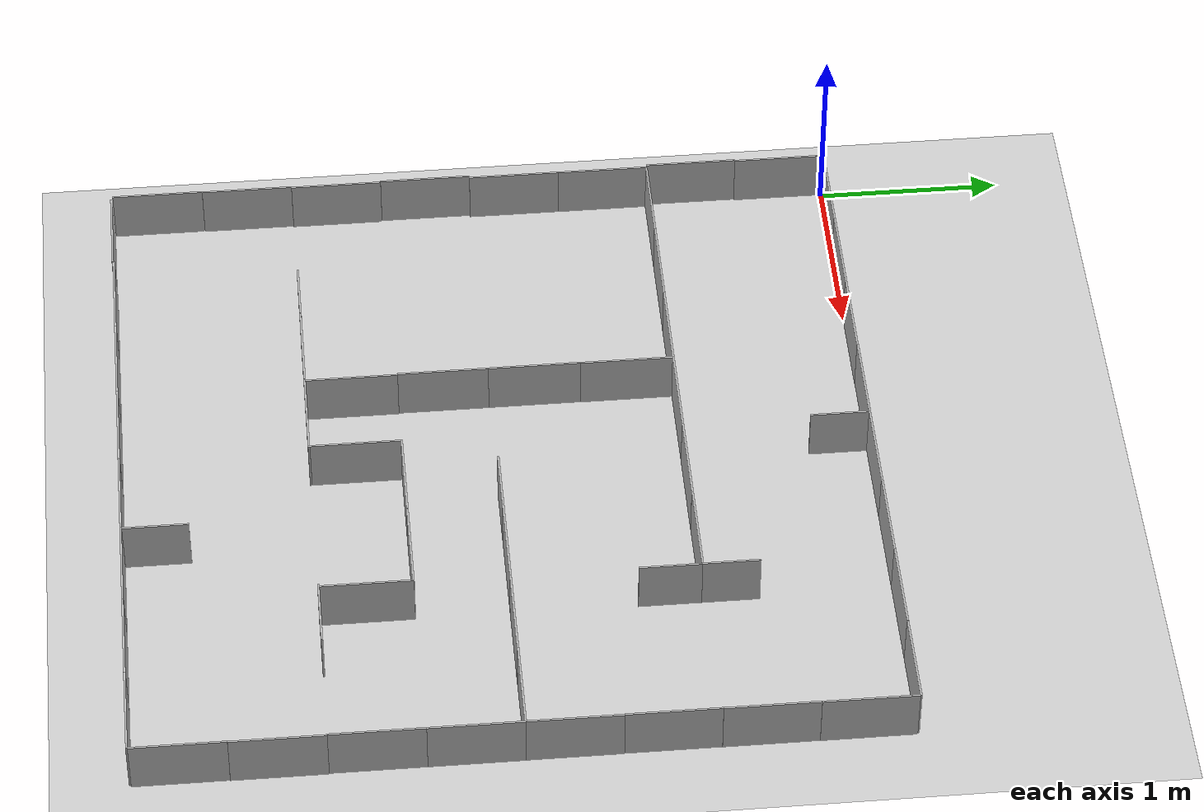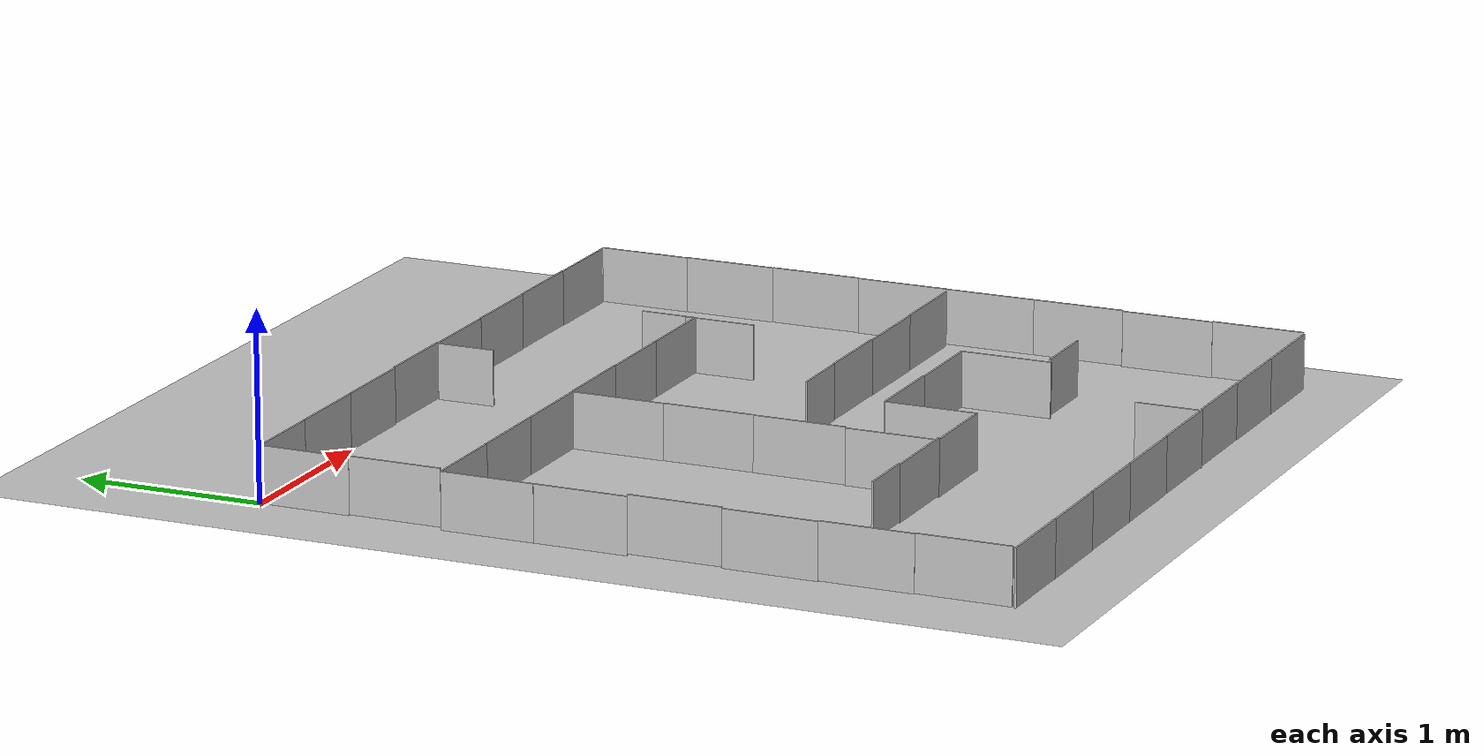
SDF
<sdf version="1.6">
 <world name="default">
  <light name="sun" type="directional">
   <pose>0 0 10 0 -0 0</pose>
   <diffuse>0.8 0.8 0.8 1</diffuse>
   <specular>0.2 0.2 0.2 1</specular>
   <attenuation>
    <range>1000</range>
    <constant>0.9</constant>
    <linear>0.01</linear>
    <quadratic>0.001</quadratic>
   </attenuation>
   <direction>-0.5 0.1 -0.9</direction>
  </light>
  <model name="ground_plane">
   <static>1</static>
   <link name="link">
    <collision name="collision">
     <geometry><plane><normal>0 0 1</normal><size>100 100</size></plane></geometry>
     <surface><friction><ode><mu>100</mu><mu2>50</mu2></ode></friction></surface>
    </collision>
    <visual name="visual">
     <cast_shadows>0</cast_shadows>
     <geometry><plane><normal>0 0 1</normal><size>100 100</size></plane></geometry>
     <material>
      <script><uri>file://media/materials/scripts/gazebo.material</uri><name>Gazebo/Grey</name></script>
     </material>
    </visual>
   </link>
  </model>
  <gravity>0 0 -9.8</gravity>
  <magnetic_field>6e-06 2.3e-05 -4.2e-05</magnetic_field>
  <atmosphere type="adiabatic"/>
  <physics name="default_physics" default="0" type="ode">
   <max_step_size>0.001</max_step_size>
   <real_time_factor>1</real_time_factor>
   <real_time_update_rate>1000</real_time_update_rate>
  </physics>
  <scene><ambient>0.4 0.4 0.4 1</ambient><background>0.7 0.7 0.7 1</background><shadows>1</shadows></scene>
  <audio><device>default</device></audio>
  <spherical_coordinates>
   <surface_model>EARTH_WGS84</surface_model>
   <latitude_deg>0</latitude_deg>
   <longitude_deg>0</longitude_deg>
   <elevation>0</elevation>
   <heading_deg>0</heading_deg>
  </spherical_coordinates>
  <model name="M1_qr_0">
   <static>1</static>
   <link name="link">
    <collision name="collision">
     <geometry><box><size>0.5 0.01 0.3</size></box></geometry>
     <surface><friction><ode><mu>30</mu><mu2>30</mu2></ode></friction></surface>
    </collision>
    <visual name="visual">
     <geometry><box><size>0.5 0.01 0.3</size></box></geometry>
     <material>
      <script>
       <uri>model://M1_qr/materials/scripts</uri>
       <uri>model://M1_qr/materials/textures/</uri>
       <name>M1_qr/Image</name>
      </script>
     </material>
    </visual>
   </link>
   <pose>0.747926 0.007287 0.147632 0 -0 0</pose>
  </model>
  <model name="M1_qr_1">
   <static>1</static>
   <link name="link">
    <collision name="collision">
     <geometry><box><size>0.5 0.01 0.3</size></box></geometry>
     <surface><friction><ode><mu>30</mu><mu2>30</mu2></ode></friction></surface>
    </collision>
    <visual name="visual">
     <geometry><box><size>0.5 0.01 0.3</size></box></geometry>
     <material>
      <script>
       <uri>model://M1_qr/materials/scripts</uri>
       <uri>model://M1_qr/materials/textures/</uri>
       <name>M1_qr/Image</name>
      </script>
     </material>
    </visual>
   </link>
   <pose>1.24851 0.006495 0.149565 0 -0 0</pose>
  </model>
  <model name="M1_qr_2">
   <static>1</static>
   <link name="link">
    <collision name="collision">
     <geometry><box><size>0.5 0.01 0.3</size></box></geometry>
     <surface><friction><ode><mu>30</mu><mu2>30</mu2></ode></friction></surface>
    </collision>
    <visual name="visual">
     <geometry><box><size>0.5 0.01 0.3</size></box></geometry>
     <material>
      <script>
       <uri>model://M1_qr/materials/scripts</uri>
       <uri>model://M1_qr/materials/textures/</uri>
       <name>M1_qr/Image</name>
      </script>
     </material>
    </visual>
   </link>
   <pose>1.74893 0.006779 0.155066 0 -0 0</pose>
  </model>
  <model name="M1_qr_3">
   <static>1</static>
   <link name="link">
    <collision name="collision">
     <geometry><box><size>0.5 0.01 0.3</size></box></geometry>
     <surface><friction><ode><mu>30</mu><mu2>30</mu2></ode></friction></surface>
    </collision>
    <visual name="visual">
     <geometry><box><size>0.5 0.01 0.3</size></box></geometry>
     <material>
      <script>
       <uri>model://M1_qr/materials/scripts</uri>
       <uri>model://M1_qr/materials/textures/</uri>
       <name>M1_qr/Image</name>
      </script>
     </material>
    </visual>
   </link>
   <pose>2.24929 0.007017 0.150922 0 -0 0</pose>
  </model>
  <model name="M1_qr_4">
   <static>1</static>
   <link name="link">
    <collision name="collision">
     <geometry><box><size>0.5 0.01 0.3</size></box></geometry>
     <surface><friction><ode><mu>30</mu><mu2>30</mu2></ode></friction></surface>
    </collision>
    <visual name="visual">
     <geometry><box><size>0.5 0.01 0.3</size></box></geometry>
     <material>
      <script>
       <uri>model://M1_qr/materials/scripts</uri>
       <uri>model://M1_qr/materials/textures/</uri>
       <name>M1_qr/Image</name>
      </script>
     </material>
    </visual>
   </link>
   <pose>2.74977 0.006999 0.153327 0 -0 0</pose>
  </model>
  <model name="M1_qr_5">
   <static>1</static>
   <link name="link">
    <collision name="collision">
     <geometry><box><size>0.5 0.01 0.3</size></box></geometry>
     <surface><friction><ode><mu>30</mu><mu2>30</mu2></ode></friction></surface>
    </collision>
    <visual name="visual">
     <geometry><box><size>0.5 0.01 0.3</size></box></geometry>
     <material>
      <script>
       <uri>model://M1_qr/materials/scripts</uri>
       <uri>model://M1_qr/materials/textures/</uri>
       <name>M1_qr/Image</name>
      </script>
     </material>
    </visual>
   </link>
   <pose>3.25049 0.00689 0.155668 0 -0 0</pose>
  </model>
  <model name="M1_qr_6">
   <static>1</static>
   <link name="link">
    <collision name="collision">
     <geometry><box><size>0.5 0.01 0.3</size></box></geometry>
     <surface><friction><ode><mu>30</mu><mu2>30</mu2></ode></friction></surface>
    </collision>
    <visual name="visual">
     <geometry><box><size>0.5 0.01 0.3</size></box></geometry>
     <material>
      <script>
       <uri>model://M1_qr/materials/scripts</uri>
       <uri>model://M1_qr/materials/textures/</uri>
       <name>M1_qr/Image</name>
      </script>
     </material>
    </visual>
   </link>
   <pose>3.75085 0.006974 0.153073 0 -0 0</pose>
  </model>
  <model name="M3_qr">
   <static>1</static>
   <link name="link">
    <collision name="collision">
     <geometry><box><size>0.01 0.5 0.3</size></box></geometry>
     <surface><friction><ode><mu>30</mu><mu2>30</mu2></ode></friction></surface>
    </collision>
    <visual name="visual">
     <geometry><box><size>0.01 0.5 0.3</size></box></geometry>
     <material>
      <script>
       <uri>model://M3_qr/materials/scripts</uri>
       <uri>model://M3_qr/materials/textures/</uri>
       <name>M3_qr/Image</name>
      </script>
     </material>
    </visual>
   </link>
   <pose>4.00638 -0.247919 0.159358 0 -0 0</pose>
  </model>
  <model name="M3_qr_0">
   <static>1</static>
   <link name="link">
    <collision name="collision">
     <geometry><box><size>0.01 0.5 0.3</size></box></geometry>
     <surface><friction><ode><mu>30</mu><mu2>30</mu2></ode></friction></surface>
    </collision>
    <visual name="visual">
     <geometry><box><size>0.01 0.5 0.3</size></box></geometry>
     <material>
      <script>
       <uri>model://M3_qr/materials/scripts</uri>
       <uri>model://M3_qr/materials/textures/</uri>
       <name>M3_qr/Image</name>
      </script>
     </material>
    </visual>
   </link>
   <pose>4.00643 -0.748517 0.160914 0 -0 0</pose>
  </model>
  <model name="M3_qr_1">
   <static>1</static>
   <link name="link">
    <collision name="collision">
     <geometry><box><size>0.01 0.5 0.3</size></box></geometry>
     <surface><friction><ode><mu>30</mu><mu2>30</mu2></ode></friction></surface>
    </collision>
    <visual name="visual">
     <geometry><box><size>0.01 0.5 0.3</size></box></geometry>
     <material>
      <script>
       <uri>model://M3_qr/materials/scripts</uri>
       <uri>model://M3_qr/materials/textures/</uri>
       <name>M3_qr/Image</name>
      </script>
     </material>
    </visual>
   </link>
   <pose>4.00637 -1.24897 0.162258 0 -0 0</pose>
  </model>
  <model name="M3_qr_2">
   <static>1</static>
   <link name="link">
    <collision name="collision">
     <geometry><box><size>0.01 0.5 0.3</size></box></geometry>
     <surface><friction><ode><mu>30</mu><mu2>30</mu2></ode></friction></surface>
    </collision>
    <visual name="visual">
     <geometry><box><size>0.01 0.5 0.3</size></box></geometry>
     <material>
      <script>
       <uri>model://M3_qr/materials/scripts</uri>
       <uri>model://M3_qr/materials/textures/</uri>
       <name>M3_qr/Image</name>
      </script>
     </material>
    </visual>
   </link>
   <pose>4.00626 -1.7491 0.160189 0 -0 0</pose>
  </model>
  <model name="M3_qr_3">
   <static>1</static>
   <link name="link">
    <collision name="collision">
     <geometry><box><size>0.01 0.5 0.3</size></box></geometry>
     <surface><friction><ode><mu>30</mu><mu2>30</mu2></ode></friction></surface>
    </collision>
    <visual name="visual">
     <geometry><box><size>0.01 0.5 0.3</size></box></geometry>
     <material>
      <script>
       <uri>model://M3_qr/materials/scripts</uri>
       <uri>model://M3_qr/materials/textures/</uri>
       <name>M3_qr/Image</name>
      </script>
     </material>
    </visual>
   </link>
   <pose>4.00628 -2.24937 0.159206 0 -0 0</pose>
  </model>
  <model name="M3_qr_4">
   <static>1</static>
   <link name="link">
    <collision name="collision">
     <geometry><box><size>0.01 0.5 0.3</size></box></geometry>
     <surface><friction><ode><mu>30</mu><mu2>30</mu2></ode></friction></surface>
    </collision>
    <visual name="visual">
     <geometry><box><size>0.01 0.5 0.3</size></box></geometry>
     <material>
      <script>
       <uri>model://M3_qr/materials/scripts</uri>
       <uri>model://M3_qr/materials/textures/</uri>
       <name>M3_qr/Image</name>
      </script>
     </material>
    </visual>
   </link>
   <pose>4.00595 -2.74938 0.15966 0 -0 0</pose>
  </model>
  <model name="M3_qr_5">
   <static>1</static>
   <link name="link">
    <collision name="collision">
     <geometry><box><size>0.01 0.5 0.3</size></box></geometry>
     <surface><friction><ode><mu>30</mu><mu2>30</mu2></ode></friction></surface>
    </collision>
    <visual name="visual">
     <geometry><box><size>0.01 0.5 0.3</size></box></geometry>
     <material>
      <script>
       <uri>model://M3_qr/materials/scripts</uri>
       <uri>model://M3_qr/materials/textures/</uri>
       <name>M3_qr/Image</name>
      </script>
     </material>
    </visual>
   </link>
   <pose>4.00606 -3.24969 0.155177 0 -0 0</pose>
  </model>
  <model name="M3_qr_6">
   <static>1</static>
   <link name="link">
    <collision name="collision">
     <geometry><box><size>0.01 0.5 0.3</size></box></geometry>
     <surface><friction><ode><mu>30</mu><mu2>30</mu2></ode></friction></surface>
    </collision>
    <visual name="visual">
     <geometry><box><size>0.01 0.5 0.3</size></box></geometry>
     <material>
      <script>
       <uri>model://M3_qr/materials/scripts</uri>
       <uri>model://M3_qr/materials/textures/</uri>
       <name>M3_qr/Image</name>
      </script>
     </material>
    </visual>
   </link>
   <pose>4.00625 -3.75002 0.158058 0 -0 0</pose>
  </model>
  <model name="M1_qr_7">
   <static>1</static>
   <link name="link">
    <collision name="collision">
     <geometry><box><size>0.5 0.01 0.3</size></box></geometry>
     <surface><friction><ode><mu>30</mu><mu2>30</mu2></ode></friction></surface>
    </collision>
    <visual name="visual">
     <geometry><box><size>0.5 0.01 0.3</size></box></geometry>
     <material>
      <script>
       <uri>model://M1_qr/materials/scripts</uri>
       <uri>model://M1_qr/materials/textures/</uri>
       <name>M1_qr/Image</name>
      </script>
     </material>
    </visual>
   </link>
   <pose>3.75096 -4.00449 0.151553 0 -0 0</pose>
  </model>
  <model name="M1_qr_8">
   <static>1</static>
   <link name="link">
    <collision name="collision">
     <geometry><box><size>0.5 0.01 0.3</size></box></geometry>
     <surface><friction><ode><mu>30</mu><mu2>30</mu2></ode></friction></surface>
    </collision>
    <visual name="visual">
     <geometry><box><size>0.5 0.01 0.3</size></box></geometry>
     <material>
      <script>
       <uri>model://M1_qr/materials/scripts</uri>
       <uri>model://M1_qr/materials/textures/</uri>
       <name>M1_qr/Image</name>
      </script>
     </material>
    </visual>
   </link>
   <pose>3.25087 -4.00444 0.151957 0 -0 0</pose>
  </model>
  <model name="M1_qr_9">
   <static>1</static>
   <link name="link">
    <collision name="collision">
     <geometry><box><size>0.5 0.01 0.3</size></box></geometry>
     <surface><friction><ode><mu>30</mu><mu2>30</mu2></ode></friction></surface>
    </collision>
    <visual name="visual">
     <geometry><box><size>0.5 0.01 0.3</size></box></geometry>
     <material>
      <script>
       <uri>model://M1_qr/materials/scripts</uri>
       <uri>model://M1_qr/materials/textures/</uri>
       <name>M1_qr/Image</name>
      </script>
     </material>
    </visual>
   </link>
   <pose>2.7506 -4.0045 0.154476 0 -0 0</pose>
  </model>
  <model name="M1_qr_10">
   <static>1</static>
   <link name="link">
    <collision name="collision">
     <geometry><box><size>0.5 0.01 0.3</size></box></geometry>
     <surface><friction><ode><mu>30</mu><mu2>30</mu2></ode></friction></surface>
    </collision>
    <visual name="visual">
     <geometry><box><size>0.5 0.01 0.3</size></box></geometry>
     <material>
      <script>
       <uri>model://M1_qr/materials/scripts</uri>
       <uri>model://M1_qr/materials/textures/</uri>
       <name>M1_qr/Image</name>
      </script>
     </material>
    </visual>
   </link>
   <pose>2.25026 -4.00466 0.151042 0 -0 0</pose>
  </model>
  <model name="M1_qr_11">
   <static>1</static>
   <link name="link">
    <collision name="collision">
     <geometry><box><size>0.5 0.01 0.3</size></box></geometry>
     <surface><friction><ode><mu>30</mu><mu2>30</mu2></ode></friction></surface>
    </collision>
    <visual name="visual">
     <geometry><box><size>0.5 0.01 0.3</size></box></geometry>
     <material>
      <script>
       <uri>model://M1_qr/materials/scripts</uri>
       <uri>model://M1_qr/materials/textures/</uri>
       <name>M1_qr/Image</name>
      </script>
     </material>
    </visual>
   </link>
   <pose>1.74963 -4.00461 0.149043 0 -0 0</pose>
  </model>
  <model name="M1_qr_12">
   <static>1</static>
   <link name="link">
    <collision name="collision">
     <geometry><box><size>0.5 0.01 0.3</size></box></geometry>
     <surface><friction><ode><mu>30</mu><mu2>30</mu2></ode></friction></surface>
    </collision>
    <visual name="visual">
     <geometry><box><size>0.5 0.01 0.3</size></box></geometry>
     <material>
      <script>
       <uri>model://M1_qr/materials/scripts</uri>
       <uri>model://M1_qr/materials/textures/</uri>
       <name>M1_qr/Image</name>
      </script>
     </material>
    </visual>
   </link>
   <pose>1.24939 -4.00477 0.149093 0 -0 0</pose>
  </model>
  <model name="M1_qr_13">
   <static>1</static>
   <link name="link">
    <collision name="collision">
     <geometry><box><size>0.5 0.01 0.3</size></box></geometry>
     <surface><friction><ode><mu>30</mu><mu2>30</mu2></ode></friction></surface>
    </collision>
    <visual name="visual">
     <geometry><box><size>0.5 0.01 0.3</size></box></geometry>
     <material>
      <script>
       <uri>model://M1_qr/materials/scripts</uri>
       <uri>model://M1_qr/materials/textures/</uri>
       <name>M1_qr/Image</name>
      </script>
     </material>
    </visual>
   </link>
   <pose>0.749721 -4.0045 0.147363 0 -0 0</pose>
  </model>
  <model name="M1_qr_14">
   <static>1</static>
   <link name="link">
    <collision name="collision">
     <geometry><box><size>0.5 0.01 0.3</size></box></geometry>
     <surface><friction><ode><mu>30</mu><mu2>30</mu2></ode></friction></surface>
    </collision>
    <visual name="visual">
     <geometry><box><size>0.5 0.01 0.3</size></box></geometry>
     <material>
      <script>
       <uri>model://M1_qr/materials/scripts</uri>
       <uri>model://M1_qr/materials/textures/</uri>
       <name>M1_qr/Image</name>
      </script>
     </material>
    </visual>
   </link>
   <pose>0.252493 -4.0088 0.153265 0 -0 0</pose>
  </model>
  <model name="M3_qr_7">
   <static>1</static>
   <link name="link">
    <collision name="collision">
     <geometry><box><size>0.01 0.5 0.3</size></box></geometry>
     <surface><friction><ode><mu>30</mu><mu2>30</mu2></ode></friction></surface>
    </collision>
    <visual name="visual">
     <geometry><box><size>0.01 0.5 0.3</size></box></geometry>
     <material>
      <script>
       <uri>model://M3_qr/materials/scripts</uri>
       <uri>model://M3_qr/materials/textures/</uri>
       <name>M3_qr/Image</name>
      </script>
     </material>
    </visual>
   </link>
   <pose>-0.005607 -0.248237 0.158668 0 -0 0</pose>
  </model>
  <model name="M3_qr_8">
   <static>1</static>
   <link name="link">
    <collision name="collision">
     <geometry><box><size>0.01 0.5 0.3</size></box></geometry>
     <surface><friction><ode><mu>30</mu><mu2>30</mu2></ode></friction></surface>
    </collision>
    <visual name="visual">
     <geometry><box><size>0.01 0.5 0.3</size></box></geometry>
     <material>
      <script>
       <uri>model://M3_qr/materials/scripts</uri>
       <uri>model://M3_qr/materials/textures/</uri>
       <name>M3_qr/Image</name>
      </script>
     </material>
    </visual>
   </link>
   <pose>-0.005586 -0.748313 0.164635 0 -0 0</pose>
  </model>
  <model name="M3_qr_9">
   <static>1</static>
   <link name="link">
    <collision name="collision">
     <geometry><box><size>0.01 0.5 0.3</size></box></geometry>
     <surface><friction><ode><mu>30</mu><mu2>30</mu2></ode></friction></surface>
    </collision>
    <visual name="visual">
     <geometry><box><size>0.01 0.5 0.3</size></box></geometry>
     <material>
      <script>
       <uri>model://M3_qr/materials/scripts</uri>
       <uri>model://M3_qr/materials/textures/</uri>
       <name>M3_qr/Image</name>
      </script>
     </material>
    </visual>
   </link>
   <pose>-0.005598 -1.24868 0.149765 0 -0 0</pose>
  </model>
  <model name="M3_qr_10">
   <static>1</static>
   <link name="link">
    <collision name="collision">
     <geometry><box><size>0.01 0.5 0.3</size></box></geometry>
     <surface><friction><ode><mu>30</mu><mu2>30</mu2></ode></friction></surface>
    </collision>
    <visual name="visual">
     <geometry><box><size>0.01 0.5 0.3</size></box></geometry>
     <material>
      <script>
       <uri>model://M3_qr/materials/scripts</uri>
       <uri>model://M3_qr/materials/textures/</uri>
       <name>M3_qr/Image</name>
      </script>
     </material>
    </visual>
   </link>
   <pose>-0.005683 -1.74896 0.150279 0 -0 0</pose>
  </model>
  <model name="M3_qr_11">
   <static>1</static>
   <link name="link">
    <collision name="collision">
     <geometry><box><size>0.01 0.5 0.3</size></box></geometry>
     <surface><friction><ode><mu>30</mu><mu2>30</mu2></ode></friction></surface>
    </collision>
    <visual name="visual">
     <geometry><box><size>0.01 0.5 0.3</size></box></geometry>
     <material>
      <script>
       <uri>model://M3_qr/materials/scripts</uri>
       <uri>model://M3_qr/materials/textures/</uri>
       <name>M3_qr/Image</name>
      </script>
     </material>
    </visual>
   </link>
   <pose>-0.006002 -2.24924 0.161275 0 -0 0</pose>
  </model>
  <model name="M3_qr_12">
   <static>1</static>
   <link name="link">
    <collision name="collision">
     <geometry><box><size>0.01 0.5 0.3</size></box></geometry>
     <surface><friction><ode><mu>30</mu><mu2>30</mu2></ode></friction></surface>
    </collision>
    <visual name="visual">
     <geometry><box><size>0.01 0.5 0.3</size></box></geometry>
     <material>
      <script>
       <uri>model://M3_qr/materials/scripts</uri>
       <uri>model://M3_qr/materials/textures/</uri>
       <name>M3_qr/Image</name>
      </script>
     </material>
    </visual>
   </link>
   <pose>-0.00604 -2.7494 0.154765 0 -0 0</pose>
  </model>
  <model name="M3_qr_13">
   <static>1</static>
   <link name="link">
    <collision name="collision">
     <geometry><box><size>0.01 0.5 0.3</size></box></geometry>
     <surface><friction><ode><mu>30</mu><mu2>30</mu2></ode></friction></surface>
    </collision>
    <visual name="visual">
     <geometry><box><size>0.01 0.5 0.3</size></box></geometry>
     <material>
      <script>
       <uri>model://M3_qr/materials/scripts</uri>
       <uri>model://M3_qr/materials/textures/</uri>
       <name>M3_qr/Image</name>
      </script>
     </material>
    </visual>
   </link>
   <pose>-0.006434 -3.24957 0.159046 0 -0 0</pose>
  </model>
  <model name="M3_qr_14">
   <static>1</static>
   <link name="link">
    <collision name="collision">
     <geometry><box><size>0.01 0.5 0.3</size></box></geometry>
     <surface><friction><ode><mu>30</mu><mu2>30</mu2></ode></friction></surface>
    </collision>
    <visual name="visual">
     <geometry><box><size>0.01 0.5 0.3</size></box></geometry>
     <material>
      <script>
       <uri>model://M3_qr/materials/scripts</uri>
       <uri>model://M3_qr/materials/textures/</uri>
       <name>M3_qr/Image</name>
      </script>
     </material>
    </visual>
   </link>
   <pose>-0.006187 -3.74977 0.162085 0 -0 0</pose>
  </model>
  <model name="M1_qr_15">
   <static>1</static>
   <link name="link">
    <collision name="collision">
     <geometry><box><size>0.5 0.01 0.3</size></box></geometry>
     <surface><friction><ode><mu>30</mu><mu2>30</mu2></ode></friction></surface>
    </collision>
    <visual name="visual">
     <geometry><box><size>0.5 0.01 0.3</size></box></geometry>
     <material>
      <script>
       <uri>model://M1_qr/materials/scripts</uri>
       <uri>model://M1_qr/materials/textures/</uri>
       <name>M1_qr/Image</name>
      </script>
     </material>
    </visual>
   </link>
   <pose>0.249362 -0.998899 0.149175 0 -0 0</pose>
  </model>
  <model name="M1_qr_16">
   <static>1</static>
   <link name="link">
    <collision name="collision">
     <geometry><box><size>0.5 0.01 0.3</size></box></geometry>
     <surface><friction><ode><mu>30</mu><mu2>30</mu2></ode></friction></surface>
    </collision>
    <visual name="visual">
     <geometry><box><size>0.5 0.01 0.3</size></box></geometry>
     <material>
      <script>
       <uri>model://M1_qr/materials/scripts</uri>
       <uri>model://M1_qr/materials/textures/</uri>
       <name>M1_qr/Image</name>
      </script>
     </material>
    </visual>
   </link>
   <pose>0.749698 -0.998839 0.149536 0 -0 0</pose>
  </model>
  <model name="M1_qr_17">
   <static>1</static>
   <link name="link">
    <collision name="collision">
     <geometry><box><size>0.5 0.01 0.3</size></box></geometry>
     <surface><friction><ode><mu>30</mu><mu2>30</mu2></ode></friction></surface>
    </collision>
    <visual name="visual">
     <geometry><box><size>0.5 0.01 0.3</size></box></geometry>
     <material>
      <script>
       <uri>model://M1_qr/materials/scripts</uri>
       <uri>model://M1_qr/materials/textures/</uri>
       <name>M1_qr/Image</name>
      </script>
     </material>
    </visual>
   </link>
   <pose>1.24964 -0.998849 0.148821 0 -0 0</pose>
  </model>
  <model name="M1_qr_18">
   <static>1</static>
   <link name="link">
    <collision name="collision">
     <geometry><box><size>0.5 0.01 0.3</size></box></geometry>
     <surface><friction><ode><mu>30</mu><mu2>30</mu2></ode></friction></surface>
    </collision>
    <visual name="visual">
     <geometry><box><size>0.5 0.01 0.3</size></box></geometry>
     <material>
      <script>
       <uri>model://M1_qr/materials/scripts</uri>
       <uri>model://M1_qr/materials/textures/</uri>
       <name>M1_qr/Image</name>
      </script>
     </material>
    </visual>
   </link>
   <pose>1.75036 -0.999132 0.151808 0 -0 0</pose>
  </model>
  <model name="M1_qr_19">
   <static>1</static>
   <link name="link">
    <collision name="collision">
     <geometry><box><size>0.5 0.01 0.3</size></box></geometry>
     <surface><friction><ode><mu>30</mu><mu2>30</mu2></ode></friction></surface>
    </collision>
    <visual name="visual">
     <geometry><box><size>0.5 0.01 0.3</size></box></geometry>
     <material>
      <script>
       <uri>model://M1_qr/materials/scripts</uri>
       <uri>model://M1_qr/materials/textures/</uri>
       <name>M1_qr/Image</name>
      </script>
     </material>
    </visual>
   </link>
   <pose>2.25094 -0.999109 0.149017 0 -0 0</pose>
  </model>
  <model name="M1_qr_20">
   <static>1</static>
   <link name="link">
    <collision name="collision">
     <geometry><box><size>0.5 0.01 0.3</size></box></geometry>
     <surface><friction><ode><mu>30</mu><mu2>30</mu2></ode></friction></surface>
    </collision>
    <visual name="visual">
     <geometry><box><size>0.5 0.01 0.3</size></box></geometry>
     <material>
      <script>
       <uri>model://M1_qr/materials/scripts</uri>
       <uri>model://M1_qr/materials/textures/</uri>
       <name>M1_qr/Image</name>
      </script>
     </material>
    </visual>
   </link>
   <pose>2.75124 -0.998821 0.147943 0 -0 0</pose>
  </model>
  <model name="M3_qr_15">
   <static>1</static>
   <link name="link">
    <collision name="collision">
     <geometry><box><size>0.01 0.391808 0.3</size></box></geometry>
     <surface><friction><ode><mu>30</mu><mu2>30</mu2></ode></friction></surface>
    </collision>
    <visual name="visual">
     <geometry><box><size>0.01 0.391808 0.3</size></box></geometry>
     <material>
      <script>
       <uri>model://M3_qr/materials/scripts</uri>
       <uri>model://M3_qr/materials/textures/</uri>
       <name>M3_qr/Image</name>
      </script>
     </material>
    </visual>
   </link>
   <pose>3.0067 -1.13581 0.142606 0 -0 0</pose>
  </model>
  <model name="M3_qr_16">
   <static>1</static>
   <link name="link">
    <collision name="collision">
     <geometry><box><size>0.01 0.305906 0.3</size></box></geometry>
     <surface><friction><ode><mu>30</mu><mu2>30</mu2></ode></friction></surface>
    </collision>
    <visual name="visual">
     <geometry><box><size>0.01 0.305906 0.3</size></box></geometry>
     <material>
      <script>
       <uri>model://M3_qr/materials/scripts</uri>
       <uri>model://M3_qr/materials/textures/</uri>
       <name>M3_qr/Image</name>
      </script>
     </material>
    </visual>
   </link>
   <pose>3.0071 -0.846167 0.144721 0 -0 0</pose>
  </model>
  <model name="M1_qr_21">
   <static>1</static>
   <link name="link">
    <collision name="collision">
     <geometry><box><size>0.5 0.01 0.3</size></box></geometry>
     <surface><friction><ode><mu>30</mu><mu2>30</mu2></ode></friction></surface>
    </collision>
    <visual name="visual">
     <geometry><box><size>0.5 0.01 0.3</size></box></geometry>
     <material>
      <script>
       <uri>model://M1_qr/materials/scripts</uri>
       <uri>model://M1_qr/materials/textures/</uri>
       <name>M1_qr/Image</name>
      </script>
     </material>
    </visual>
   </link>
   <pose>3.75125 -1.99911 0.14586 0 -0 0</pose>
  </model>
  <model name="M1_qr_22">
   <static>1</static>
   <link name="link">
    <collision name="collision">
     <geometry><box><size>0.5 0.01 0.3</size></box></geometry>
     <surface><friction><ode><mu>30</mu><mu2>30</mu2></ode></friction></surface>
    </collision>
    <visual name="visual">
     <geometry><box><size>0.5 0.01 0.3</size></box></geometry>
     <material>
      <script>
       <uri>model://M1_qr/materials/scripts</uri>
       <uri>model://M1_qr/materials/textures/</uri>
       <name>M1_qr/Image</name>
      </script>
     </material>
    </visual>
   </link>
   <pose>3.25087 -1.99935 0.14306 0 -0 0</pose>
  </model>
  <model name="M1_qr_23">
   <static>1</static>
   <link name="link">
    <collision name="collision">
     <geometry><box><size>0.5 0.01 0.3</size></box></geometry>
     <surface><friction><ode><mu>30</mu><mu2>30</mu2></ode></friction></surface>
    </collision>
    <visual name="visual">
     <geometry><box><size>0.5 0.01 0.3</size></box></geometry>
     <material>
      <script>
       <uri>model://M1_qr/materials/scripts</uri>
       <uri>model://M1_qr/materials/textures/</uri>
       <name>M1_qr/Image</name>
      </script>
     </material>
    </visual>
   </link>
   <pose>2.75074 -1.99946 0.147872 0 -0 0</pose>
  </model>
  <model name="M1_qr_24">
   <static>1</static>
   <link name="link">
    <collision name="collision">
     <geometry><box><size>0.34881 0.01 0.3</size></box></geometry>
     <surface><friction><ode><mu>30</mu><mu2>30</mu2></ode></friction></surface>
    </collision>
    <visual name="visual">
     <geometry><box><size>0.34881 0.01 0.3</size></box></geometry>
     <material>
      <script>
       <uri>model://M1_qr/materials/scripts</uri>
       <uri>model://M1_qr/materials/textures/</uri>
       <name>M1_qr/Image</name>
      </script>
     </material>
    </visual>
   </link>
   <pose>2.32615 -1.99921 0.145461 0 -0 0</pose>
  </model>
  <model name="M3_qr_17">
   <static>1</static>
   <link name="link">
    <collision name="collision">
     <geometry><box><size>0.01 0.5 0.3</size></box></geometry>
     <surface><friction><ode><mu>30</mu><mu2>30</mu2></ode></friction></surface>
    </collision>
    <visual name="visual">
     <geometry><box><size>0.01 0.5 0.3</size></box></geometry>
     <material>
      <script>
       <uri>model://M3_qr/materials/scripts</uri>
       <uri>model://M3_qr/materials/textures/</uri>
       <name>M3_qr/Image</name>
      </script>
     </material>
    </visual>
   </link>
   <pose>1.5004 -1.25412 0.147536 0 -0 0</pose>
  </model>
  <model name="M3_qr_18">
   <static>1</static>
   <link name="link">
    <collision name="collision">
     <geometry><box><size>0.01 0.5 0.3</size></box></geometry>
     <surface><friction><ode><mu>30</mu><mu2>30</mu2></ode></friction></surface>
    </collision>
    <visual name="visual">
     <geometry><box><size>0.01 0.5 0.3</size></box></geometry>
     <material>
      <script>
       <uri>model://M3_qr/materials/scripts</uri>
       <uri>model://M3_qr/materials/textures/</uri>
       <name>M3_qr/Image</name>
      </script>
     </material>
    </visual>
   </link>
   <pose>1.50036 -1.75419 0.148975 0 -0 0</pose>
  </model>
  <model name="M3_qr_19">
   <static>1</static>
   <link name="link">
    <collision name="collision">
     <geometry><box><size>0.01 0.5 0.3</size></box></geometry>
     <surface><friction><ode><mu>30</mu><mu2>30</mu2></ode></friction></surface>
    </collision>
    <visual name="visual">
     <geometry><box><size>0.01 0.5 0.3</size></box></geometry>
     <material>
      <script>
       <uri>model://M3_qr/materials/scripts</uri>
       <uri>model://M3_qr/materials/textures/</uri>
       <name>M3_qr/Image</name>
      </script>
     </material>
    </visual>
   </link>
   <pose>1.49999 -2.24534 0.148089 0 -0 0</pose>
  </model>
  <model name="M3_qr_20">
   <static>1</static>
   <link name="link">
    <collision name="collision">
     <geometry><box><size>0.01 0.5 0.3</size></box></geometry>
     <surface><friction><ode><mu>30</mu><mu2>30</mu2></ode></friction></surface>
    </collision>
    <visual name="visual">
     <geometry><box><size>0.01 0.5 0.3</size></box></geometry>
     <material>
      <script>
       <uri>model://M3_qr/materials/scripts</uri>
       <uri>model://M3_qr/materials/textures/</uri>
       <name>M3_qr/Image</name>
      </script>
     </material>
    </visual>
   </link>
   <pose>1.50059 -2.74445 0.142759 0 -0 0</pose>
  </model>
  <model name="M1_qr_25">
   <static>1</static>
   <link name="link">
    <collision name="collision">
     <geometry><box><size>0.5 0.01 0.3</size></box></geometry>
     <surface><friction><ode><mu>30</mu><mu2>30</mu2></ode></friction></surface>
    </collision>
    <visual name="visual">
     <geometry><box><size>0.5 0.01 0.3</size></box></geometry>
     <material>
      <script>
       <uri>model://M1_qr/materials/scripts</uri>
       <uri>model://M1_qr/materials/textures/</uri>
       <name>M1_qr/Image</name>
      </script>
     </material>
    </visual>
   </link>
   <pose>1.74874 -2.996 0.145998 0 -0 0</pose>
  </model>
  <model name="M3_qr_21">
   <static>1</static>
   <link name="link">
    <collision name="collision">
     <geometry><box><size>0.01 0.5 0.3</size></box></geometry>
     <surface><friction><ode><mu>30</mu><mu2>30</mu2></ode></friction></surface>
    </collision>
    <visual name="visual">
     <geometry><box><size>0.01 0.5 0.3</size></box></geometry>
     <material>
      <script>
       <uri>model://M3_qr/materials/scripts</uri>
       <uri>model://M3_qr/materials/textures/</uri>
       <name>M3_qr/Image</name>
      </script>
     </material>
    </visual>
   </link>
   <pose>1.99339 -2.75047 0.146173 0 -0 0</pose>
  </model>
  <model name="M3_qr_22">
   <static>1</static>
   <link name="link">
    <collision name="collision">
     <geometry><box><size>0.01 0.5 0.3</size></box></geometry>
     <surface><friction><ode><mu>30</mu><mu2>30</mu2></ode></friction></surface>
    </collision>
    <visual name="visual">
     <geometry><box><size>0.01 0.5 0.3</size></box></geometry>
     <material>
      <script>
       <uri>model://M3_qr/materials/scripts</uri>
       <uri>model://M3_qr/materials/textures/</uri>
       <name>M3_qr/Image</name>
      </script>
     </material>
    </visual>
   </link>
   <pose>2.99432 -2.74913 0.145416 0 -0 0</pose>
  </model>
  <model name="M1_qr_26">
   <static>1</static>
   <link name="link">
    <collision name="collision">
     <geometry><box><size>0.379117 0.01 0.3</size></box></geometry>
     <surface><friction><ode><mu>30</mu><mu2>30</mu2></ode></friction></surface>
    </collision>
    <visual name="visual">
     <geometry><box><size>0.379117 0.01 0.3</size></box></geometry>
     <material>
      <script>
       <uri>model://M1_qr/materials/scripts</uri>
       <uri>model://M1_qr/materials/textures/</uri>
       <name>M1_qr/Image</name>
      </script>
     </material>
    </visual>
   </link>
   <pose>3.18013 -2.99398 0.161823 0 -0 0</pose>
  </model>
  <model name="M1_qr_27">
   <static>1</static>
   <link name="link">
    <collision name="collision">
     <geometry><box><size>0.5 0.01 0.3</size></box></geometry>
     <surface><friction><ode><mu>30</mu><mu2>30</mu2></ode></friction></surface>
    </collision>
    <visual name="visual">
     <geometry><box><size>0.5 0.01 0.3</size></box></geometry>
     <material>
      <script>
       <uri>model://M1_qr/materials/scripts</uri>
       <uri>model://M1_qr/materials/textures/</uri>
       <name>M1_qr/Image</name>
      </script>
     </material>
    </visual>
   </link>
   <pose>2.23932 -2.5023 0.148625 0 -0 0</pose>
  </model>
  <model name="M1_qr_28">
   <static>1</static>
   <link name="link">
    <collision name="collision">
     <geometry><box><size>0.5 0.01 0.3</size></box></geometry>
     <surface><friction><ode><mu>30</mu><mu2>30</mu2></ode></friction></surface>
    </collision>
    <visual name="visual">
     <geometry><box><size>0.5 0.01 0.3</size></box></geometry>
     <material>
      <script>
       <uri>model://M1_qr/materials/scripts</uri>
       <uri>model://M1_qr/materials/textures/</uri>
       <name>M1_qr/Image</name>
      </script>
     </material>
    </visual>
   </link>
   <pose>2.73983 -2.50234 0.145304 0 -0 0</pose>
  </model>
  <model name="M3_qr_23">
   <static>1</static>
   <link name="link">
    <collision name="collision">
     <geometry><box><size>0.01 0.360804 0.3</size></box></geometry>
     <surface><friction><ode><mu>30</mu><mu2>30</mu2></ode></friction></surface>
    </collision>
    <visual name="visual">
     <geometry><box><size>0.01 0.360804 0.3</size></box></geometry>
     <material>
      <script>
       <uri>model://M3_qr/materials/scripts</uri>
       <uri>model://M3_qr/materials/textures/</uri>
       <name>M3_qr/Image</name>
      </script>
     </material>
    </visual>
   </link>
   <pose>2.50017 -3.82894 0.146896 0 -0 0</pose>
  </model>
  <model name="M1_qr_29">
   <static>1</static>
   <link name="link">
    <collision name="collision">
     <geometry><box><size>0.332024 0.01 0.3</size></box></geometry>
     <surface><friction><ode><mu>30</mu><mu2>30</mu2></ode></friction></surface>
    </collision>
    <visual name="visual">
     <geometry><box><size>0.332024 0.01 0.3</size></box></geometry>
     <material>
      <script>
       <uri>model://M1_qr/materials/scripts</uri>
       <uri>model://M1_qr/materials/textures/</uri>
       <name>M1_qr/Image</name>
      </script>
     </material>
    </visual>
   </link>
   <pose>0.831715 -2.99472 0.162044 0 -0 0</pose>
  </model>
  <model name="M1_qr">
   <static>1</static>
   <link name="link">
    <collision name="collision">
     <geometry><box><size>0.5 0.01 0.3</size></box></geometry>
     <surface><friction><ode><mu>30</mu><mu2>30</mu2></ode></friction></surface>
    </collision>
    <visual name="visual">
     <geometry><box><size>0.5 0.01 0.3</size></box></geometry>
     <material>
      <script>
       <uri>model://M1_qr/materials/scripts</uri>
       <uri>model://M1_qr/materials/textures/</uri>
       <name>M1_qr/Image</name>
      </script>
     </material>
    </visual>
   </link>
   <pose>0.247926 0.007575 0.147021 0 -0 0</pose>
  </model>
  <model name="M3_qr_24">
   <static>1</static>
   <link name="link">
    <collision name="collision">
     <geometry><box><size>0.01 0.314235 0.3</size></box></geometry>
     <surface><friction><ode><mu>30</mu><mu2>30</mu2></ode></friction></surface>
    </collision>
    <visual name="visual">
     <geometry><box><size>0.01 0.314235 0.3</size></box></geometry>
     <material>
      <script>
       <uri>model://M3_qr/materials/scripts</uri>
       <uri>model://M3_qr/materials/textures/</uri>
       <name>M3_qr/Image</name>
      </script>
     </material>
    </visual>
   </link>
   <pose>1.99933 -0.15543 0.150609 0 -0 0</pose>
  </model>
  <model name="M1_qr_30">
   <static>1</static>
   <link name="link">
    <collision name="collision">
     <geometry><box><size>0.5 0.01 0.3</size></box></geometry>
     <surface><friction><ode><mu>30</mu><mu2>30</mu2></ode></friction></surface>
    </collision>
    <visual name="visual">
     <geometry><box><size>0.5 0.01 0.3</size></box></geometry>
     <material>
      <script>
       <uri>model://M1_qr/materials/scripts</uri>
       <uri>model://M1_qr/materials/textures/</uri>
       <name>M1_qr/Image</name>
      </script>
     </material>
    </visual>
   </link>
   <pose>1.24751 -2.99545 0.155299 0 -0 0</pose>
  </model>
 </world>
</sdf>
